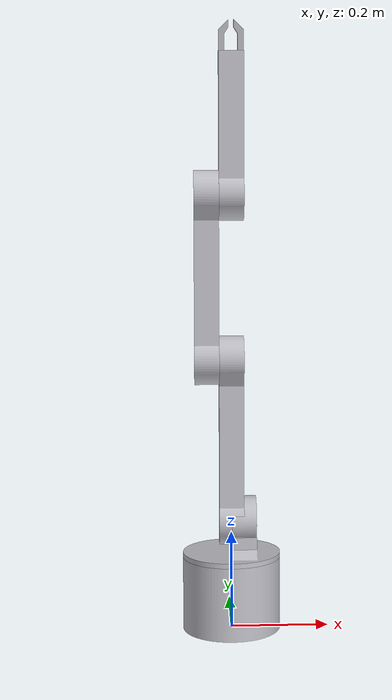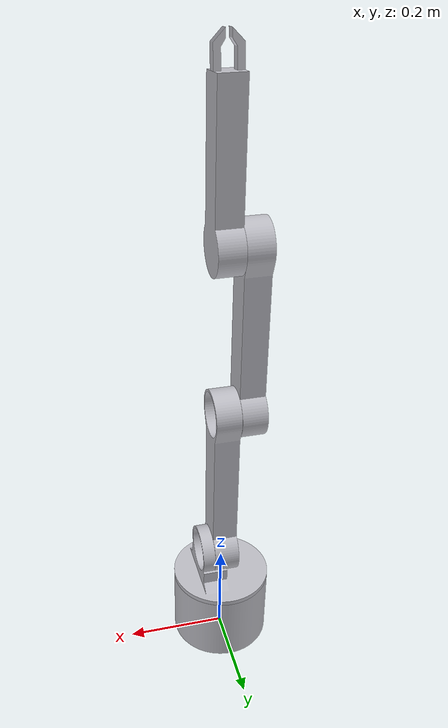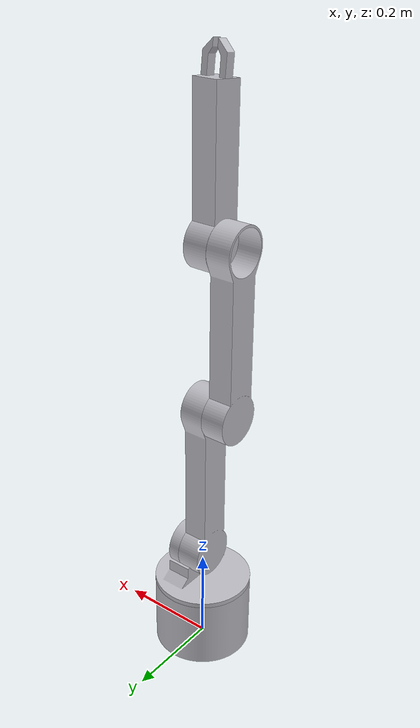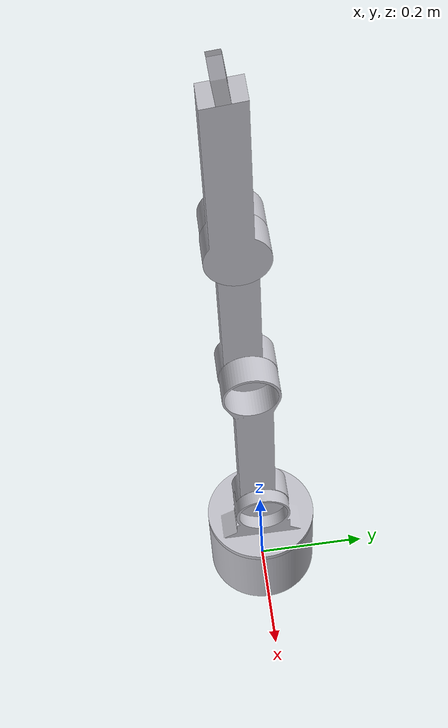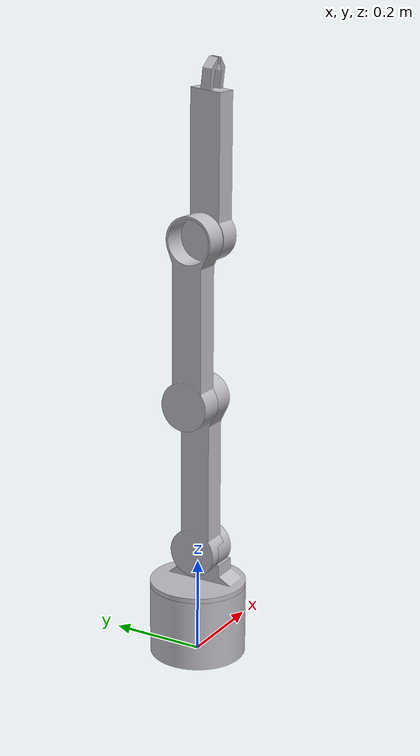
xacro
<?xml version="1.0" ?>
<robot name="Robotic" xmlns:xacro="http://www.ros.org/wiki/xacro">

<xacro:include filename="$(find Robotic_description)/urdf/materials.xacro" />
<xacro:include filename="$(find Robotic_description)/urdf/Robotic.trans" />
<xacro:include filename="$(find Robotic_description)/urdf/Robotic.gazebo" />
<link name="base_link">
  <inertial>
    <origin xyz="1.6640170895190729e-16 3.025485617307405e-17 0.057904964075767486" rpy="0 0 0"/>
    <mass value="0.6613445234888192"/>
    <inertia ixx="0.00433" iyy="0.00433" izz="0.005511" ixy="0.0" iyz="0.0" ixz="0.0"/>
  </inertial>
  <visual>
    <origin xyz="0 0 0" rpy="0 0 0"/>
    <geometry>
      <mesh filename="package://Robotic_description/meshes/base_link.stl" scale="0.001 0.001 0.001"/>
    </geometry>
    <material name="silver"/>
  </visual>
  <collision>
    <origin xyz="0 0 0" rpy="0 0 0"/>
    <geometry>
      <mesh filename="package://Robotic_description/meshes/base_link.stl" scale="0.001 0.001 0.001"/>
    </geometry>
  </collision>
</link>

<link name="ARM3_2">
  <inertial>
    <origin xyz="-0.025000000000000105 0.12254927997133135 0.004516375891340463" rpy="0 0 0"/>
    <mass value="9.751530853135536"/>
    <inertia ixx="0.119185" iyy="0.006843" izz="0.116405" ixy="-0.0" iyz="-0.002327" ixz="-0.0"/>
  </inertial>
  <visual>
    <origin xyz="0.025 0.009385 -0.558655" rpy="0 0 0"/>
    <geometry>
      <mesh filename="package://Robotic_description/meshes/ARM3_2.stl" scale="0.001 0.001 0.001"/>
    </geometry>
    <material name="silver"/>
  </visual>
  <collision>
    <origin xyz="0.025 0.009385 -0.558655" rpy="0 0 0"/>
    <geometry>
      <mesh filename="package://Robotic_description/meshes/ARM3_2.stl" scale="0.001 0.001 0.001"/>
    </geometry>
  </collision>
</link>

<link name="Component8_2">
  <inertial>
    <origin xyz="-0.014167680831496617 -0.16085330338194437 -0.2517490300577758" rpy="0 0 0"/>
    <mass value="0.10872533068955877"/>
    <inertia ixx="3e-05" iyy="2.9e-05" izz="6e-06" ixy="-0.0" iyz="2e-06" ixz="5e-06"/>
  </inertial>
  <visual>
    <origin xyz="0.00274 -0.480294 -0.508628" rpy="0 0 0"/>
    <geometry>
      <mesh filename="package://Robotic_description/meshes/Component8_2.stl" scale="0.001 0.001 0.001"/>
    </geometry>
    <material name="silver"/>
  </visual>
  <collision>
    <origin xyz="0.00274 -0.480294 -0.508628" rpy="0 0 0"/>
    <geometry>
      <mesh filename="package://Robotic_description/meshes/Component8_2.stl" scale="0.001 0.001 0.001"/>
    </geometry>
  </collision>
</link>

<link name="Component8_1">
  <inertial>
    <origin xyz="0.01964768083149642 -0.16089243613980747 -0.25175176136831007" rpy="0 0 0"/>
    <mass value="0.10872533068955877"/>
    <inertia ixx="3e-05" iyy="2.9e-05" izz="6e-06" ixy="0.0" iyz="2e-06" ixz="-5e-06"/>
  </inertial>
  <visual>
    <origin xyz="0.00274 -0.480294 -0.508628" rpy="0 0 0"/>
    <geometry>
      <mesh filename="package://Robotic_description/meshes/Component8_1.stl" scale="0.001 0.001 0.001"/>
    </geometry>
    <material name="silver"/>
  </visual>
  <collision>
    <origin xyz="0.00274 -0.480294 -0.508628" rpy="0 0 0"/>
    <geometry>
      <mesh filename="package://Robotic_description/meshes/Component8_1.stl" scale="0.001 0.001 0.001"/>
    </geometry>
  </collision>
</link>

<link name="Component7_1">
  <inertial>
    <origin xyz="0.024999999999999876 -0.00021947749322320798 -0.1087515414193721" rpy="0 0 0"/>
    <mass value="9.054825196129269"/>
    <inertia ixx="0.089485" iyy="0.087308" izz="0.005949" ixy="0.0" iyz="-0.001558" ixz="0.0"/>
  </inertial>
  <visual>
    <origin xyz="0.025 -0.323161 -0.568469" rpy="0 0 0"/>
    <geometry>
      <mesh filename="package://Robotic_description/meshes/Component7_1.stl" scale="0.001 0.001 0.001"/>
    </geometry>
    <material name="silver"/>
  </visual>
  <collision>
    <origin xyz="0.025 -0.323161 -0.568469" rpy="0 0 0"/>
    <geometry>
      <mesh filename="package://Robotic_description/meshes/Component7_1.stl" scale="0.001 0.001 0.001"/>
    </geometry>
  </collision>
</link>

<link name="ARM3_1">
  <inertial>
    <origin xyz="1.0658141036401502e-16 -0.004599414182134712 0.12254624835995875" rpy="0 0 0"/>
    <mass value="9.751530853135536"/>
    <inertia ixx="0.119185" iyy="0.116402" izz="0.006846" ixy="-0.0" iyz="0.002401" ixz="0.0"/>
  </inertial>
  <visual>
    <origin xyz="-0.0 -0.000654 -0.226115" rpy="0 0 0"/>
    <geometry>
      <mesh filename="package://Robotic_description/meshes/ARM3_1.stl" scale="0.001 0.001 0.001"/>
    </geometry>
    <material name="silver"/>
  </visual>
  <collision>
    <origin xyz="-0.0 -0.000654 -0.226115" rpy="0 0 0"/>
    <geometry>
      <mesh filename="package://Robotic_description/meshes/ARM3_1.stl" scale="0.001 0.001 0.001"/>
    </geometry>
  </collision>
</link>

<link name="Component9_1">
  <inertial>
    <origin xyz="0.010168251277906446 -0.0006225548633208727 0.018923349280593527" rpy="0 0 0"/>
    <mass value="4.156877046794862"/>
    <inertia ixx="0.011162" iyy="0.00995" izz="0.015501" ixy="3.8e-05" iyz="8.9e-05" ixz="-0.000858"/>
  </inertial>
  <visual>
    <origin xyz="-0.0 -0.0 -0.15" rpy="0 0 0"/>
    <geometry>
      <mesh filename="package://Robotic_description/meshes/Component9_1.stl" scale="0.001 0.001 0.001"/>
    </geometry>
    <material name="silver"/>
  </visual>
  <collision>
    <origin xyz="-0.0 -0.0 -0.15" rpy="0 0 0"/>
    <geometry>
      <mesh filename="package://Robotic_description/meshes/Component9_1.stl" scale="0.001 0.001 0.001"/>
    </geometry>
  </collision>
</link>

<joint name="Revolute 12" type="continuous">
  <origin xyz="-0.025 -0.010039 0.33254" rpy="0 0 0"/>
  <parent link="ARM3_1"/>
  <child link="ARM3_2"/>
  <axis xyz="-1.0 -0.0 0.0"/>
</joint>

<joint name="Slider 14" type="prismatic">
  <origin xyz="0.02226 0.157133 -0.059841" rpy="0 0 0"/>
  <parent link="Component7_1"/>
  <child link="Component8_2"/>
  <axis xyz="1.0 0.0 -0.0"/>
  <limit upper="0.0" lower="0.0" effort="100" velocity="100"/>
</joint>

<joint name="Slider 15" type="prismatic">
  <origin xyz="0.02226 0.157133 -0.059841" rpy="0 0 0"/>
  <parent link="Component7_1"/>
  <child link="Component8_1"/>
  <axis xyz="1.0 0.0 -0.0"/>
  <limit upper="0.0" lower="0.0" effort="100" velocity="100"/>
</joint>

<joint name="Revolute 16" type="continuous">
  <origin xyz="0.0 0.332546 0.009814" rpy="0 0 0"/>
  <parent link="ARM3_2"/>
  <child link="Component7_1"/>
  <axis xyz="-1.0 0.0 0.0"/>
</joint>

<joint name="Revolute 17" type="continuous">
  <origin xyz="0.0 0.000654 0.076115" rpy="0 0 0"/>
  <parent link="Component9_1"/>
  <child link="ARM3_1"/>
  <axis xyz="-1.0 0.0 0.0"/>
</joint>

<joint name="Revolute 18" type="continuous">
  <origin xyz="0.0 0.0 0.15" rpy="0 0 0"/>
  <parent link="base_link"/>
  <child link="Component9_1"/>
  <axis xyz="0.0 0.0 -1.0"/>
</joint>

</robot>

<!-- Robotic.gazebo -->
<robot name="Robotic" xmlns:xacro="http://www.ros.org/wiki/xacro" >

<xacro:property name="body_color" value="Gazebo/Silver" />

<gazebo>
  <plugin name="control" filename="libgazebo_ros_control.so"/>
</gazebo>
<gazebo reference="base_link">
  <material>${body_color}</material>
  <mu1>0.2</mu1>
  <mu2>0.2</mu2>
  <selfCollide>true</selfCollide>
  <gravity>true</gravity>
</gazebo>

<gazebo reference="ARM3_2">
  <material>${body_color}</material>
  <mu1>0.2</mu1>
  <mu2>0.2</mu2>
  <selfCollide>true</selfCollide>
</gazebo>

<gazebo reference="Component8_2">
  <material>${body_color}</material>
  <mu1>0.2</mu1>
  <mu2>0.2</mu2>
  <selfCollide>true</selfCollide>
</gazebo>

<gazebo reference="Component8_1">
  <material>${body_color}</material>
  <mu1>0.2</mu1>
  <mu2>0.2</mu2>
  <selfCollide>true</selfCollide>
</gazebo>

<gazebo reference="Component7_1">
  <material>${body_color}</material>
  <mu1>0.2</mu1>
  <mu2>0.2</mu2>
  <selfCollide>true</selfCollide>
</gazebo>

<gazebo reference="ARM3_1">
  <material>${body_color}</material>
  <mu1>0.2</mu1>
  <mu2>0.2</mu2>
  <selfCollide>true</selfCollide>
</gazebo>

<gazebo reference="Component9_1">
  <material>${body_color}</material>
  <mu1>0.2</mu1>
  <mu2>0.2</mu2>
  <selfCollide>true</selfCollide>
</gazebo>

</robot>
